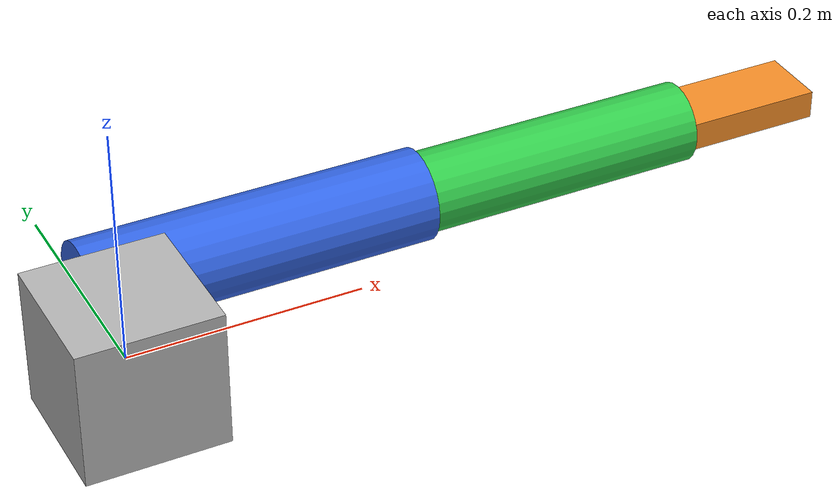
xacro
<?xml version="1.0"?>
<robot name="dracomancer" xmlns:xacro="http://www.ros.org/wiki/xacro">

  <!-- ===== Parameters ===== -->
  <xacro:property name="pi" value="3.141592653589793"/>

  <!-- Lengths [m] -->
  <xacro:property name="upper_arm_length" value="0.30"/>
  <xacro:property name="forearm_length"  value="0.25"/>
  <xacro:property name="hand_length"     value="0.12"/>

  <!-- Radii [m] -->
  <xacro:property name="upper_arm_radius" value="0.04"/>
  <xacro:property name="forearm_radius"   value="0.035"/>
  <xacro:property name="wrist_radius"     value="0.03"/>

  <!-- Masses [kg] -->
  <xacro:property name="upper_arm_mass" value="2.0"/>
  <xacro:property name="forearm_mass"   value="1.5"/>
  <xacro:property name="hand_mass"      value="0.6"/>

  <!-- ===== Macros ===== -->
  <xacro:macro name="box_inertial" params="mass x y z">
    <inertial>
      <mass value="${mass}"/>
      <origin xyz="0 0 0" rpy="0 0 0"/>
      <inertia
        ixx="${mass*(y*y+z*z)/12.0}"
        ixy="0.0"
        ixz="0.0"
        iyy="${mass*(x*x+z*z)/12.0}"
        iyz="0.0"
        izz="${mass*(x*x+y*y)/12.0}"/>
    </inertial>
  </xacro:macro>

  <xacro:macro name="cylinder_inertial" params="mass radius length axis">
    <inertial>
      <mass value="${mass}"/>
      <origin xyz="0 0 0" rpy="0 0 0"/>
      <!-- default: cylinder whose principal axis is z -->
      <xacro:if value="${axis == 'z'}">
        <inertia
          ixx="${mass*(3*radius*radius + length*length)/12.0}"
          ixy="0.0"
          ixz="0.0"
          iyy="${mass*(3*radius*radius + length*length)/12.0}"
          iyz="0.0"
          izz="${0.5*mass*radius*radius}"/>
      </xacro:if>
      <!-- cylinder principal axis is x -->
      <xacro:if value="${axis == 'x'}">
        <inertia
          ixx="${0.5*mass*radius*radius}"
          ixy="0.0"
          ixz="0.0"
          iyy="${mass*(3*radius*radius + length*length)/12.0}"
          iyz="0.0"
          izz="${mass*(3*radius*radius + length*length)/12.0}"/>
      </xacro:if>
      <!-- cylinder principal axis is y -->
      <xacro:if value="${axis == 'y'}">
        <inertia
          ixx="${mass*(3*radius*radius + length*length)/12.0}"
          ixy="0.0"
          ixz="0.0"
          iyy="${0.5*mass*radius*radius}"
          iyz="0.0"
          izz="${mass*(3*radius*radius + length*length)/12.0}"/>
      </xacro:if>
    </inertial>
  </xacro:macro>

  <xacro:macro name="arm_segment" params="name length radius mass color">
    <link name="${name}">
      <visual>
        <!-- cylinder axis is z, so rotate to align along x -->
        <origin xyz="${length/2.0} 0 0" rpy="0 ${pi/2.0} 0"/>
        <geometry>
          <cylinder radius="${radius}" length="${length}"/>
        </geometry>
        <material name="${color}"/>
      </visual>

      <collision>
        <origin xyz="${length/2.0} 0 0" rpy="0 ${pi/2.0} 0"/>
        <geometry>
          <cylinder radius="${radius}" length="${length}"/>
        </geometry>
      </collision>

      <xacro:cylinder_inertial mass="${mass}" radius="${radius}" length="${length}" axis="x"/>
    </link>
  </xacro:macro>

  <!-- ===== Materials ===== -->
  <material name="gray">
    <color rgba="0.7 0.7 0.7 1.0"/>
  </material>
  <material name="blue">
    <color rgba="0.2 0.4 0.9 1.0"/>
  </material>
  <material name="green">
    <color rgba="0.2 0.8 0.3 1.0"/>
  </material>
  <material name="orange">
    <color rgba="0.95 0.55 0.15 1.0"/>
  </material>

  <!-- ===== Base ===== -->
  <link name="torso_anchor">
    <visual>
      <origin xyz="0 0 0" rpy="0 0 0"/>
      <geometry>
        <box size="0.12 0.12 0.12"/>
      </geometry>
      <material name="gray"/>
    </visual>
    <collision>
      <origin xyz="0 0 0" rpy="0 0 0"/>
      <geometry>
        <box size="0.12 0.12 0.12"/>
      </geometry>
    </collision>
    <xacro:box_inertial mass="5.0" x="0.12" y="0.12" z="0.12"/>
  </link>

  <!-- dummy links for multi-DoF shoulder -->
  <link name="shoulder_yaw_link"/>
  <link name="shoulder_pitch_link"/>
  <link name="shoulder_roll_link"/>
  <link name="elbow_link"/>
  <link name="forearm_rot_link"/>
  <link name="wrist_pitch_link"/>
  <link name="wrist_yaw_link"/>

  <!-- actual geometry links -->
  <xacro:arm_segment name="upper_arm_link"
                     length="${upper_arm_length}"
                     radius="${upper_arm_radius}"
                     mass="${upper_arm_mass}"
                     color="blue"/>

  <xacro:arm_segment name="forearm_link"
                     length="${forearm_length}"
                     radius="${forearm_radius}"
                     mass="${forearm_mass}"
                     color="green"/>

  <link name="hand_link">
    <visual>
      <origin xyz="${hand_length/2.0} 0 0" rpy="0 0 0"/>
      <geometry>
        <box size="${hand_length} 0.06 0.025"/>
      </geometry>
      <material name="orange"/>
    </visual>
    <collision>
      <origin xyz="${hand_length/2.0} 0 0" rpy="0 0 0"/>
      <geometry>
        <box size="${hand_length} 0.06 0.025"/>
      </geometry>
    </collision>
    <xacro:box_inertial mass="${hand_mass}" x="${hand_length}" y="0.06" z="0.025"/>
  </link>

  <!-- ===== Joints ===== -->

  <!-- Shoulder 3DoF -->
  <joint name="shoulder_yaw_joint" type="revolute">
    <parent link="torso_anchor"/>
    <child link="shoulder_yaw_link"/>
    <origin xyz="0 0.10 0" rpy="0 0 0"/>
    <axis xyz="0 0 1"/>
    <limit lower="${-pi}" upper="${pi}" effort="30" velocity="3.0"/>
  </joint>

  <joint name="shoulder_pitch_joint" type="revolute">
    <parent link="shoulder_yaw_link"/>
    <child link="shoulder_pitch_link"/>
    <origin xyz="0 0 0" rpy="0 0 0"/>
    <axis xyz="0 1 0"/>
    <limit lower="${-pi/2.0}" upper="${pi/2.0}" effort="30" velocity="3.0"/>
  </joint>

  <joint name="shoulder_roll_joint" type="revolute">
    <parent link="shoulder_pitch_link"/>
    <child link="shoulder_roll_link"/>
    <origin xyz="0 0 0" rpy="0 0 0"/>
    <axis xyz="1 0 0"/>
    <limit lower="${-pi/2.0}" upper="${pi/2.0}" effort="20" velocity="3.0"/>
  </joint>

  <joint name="upper_arm_fixed" type="fixed">
    <parent link="shoulder_roll_link"/>
    <child link="upper_arm_link"/>
    <origin xyz="0 0 0" rpy="0 0 0"/>
  </joint>

  <!-- Elbow flexion -->
  <joint name="elbow_flex_joint" type="revolute">
    <parent link="upper_arm_link"/>
    <child link="elbow_link"/>
    <origin xyz="${upper_arm_length} 0 0" rpy="0 0 0"/>
    <axis xyz="0 1 0"/>
    <limit lower="0.0" upper="${5.0*pi/6.0}" effort="20" velocity="3.0"/>
  </joint>

  <joint name="forearm_fixed" type="fixed">
    <parent link="elbow_link"/>
    <child link="forearm_rot_link"/>
    <origin xyz="0 0 0" rpy="0 0 0"/>
  </joint>

  <!-- Forearm pronation/supination -->
  <joint name="forearm_rot_joint" type="revolute">
    <parent link="forearm_rot_link"/>
    <child link="forearm_link"/>
    <origin xyz="0 0 0" rpy="0 0 0"/>
    <axis xyz="1 0 0"/>
    <limit lower="${-pi}" upper="${pi}" effort="10" velocity="4.0"/>
  </joint>

  <!-- Wrist 2DoF -->
  <joint name="wrist_pitch_joint" type="revolute">
    <parent link="forearm_link"/>
    <child link="wrist_pitch_link"/>
    <origin xyz="${forearm_length} 0 0" rpy="0 0 0"/>
    <axis xyz="0 1 0"/>
    <limit lower="${-pi/2.0}" upper="${pi/2.0}" effort="8" velocity="4.0"/>
  </joint>

  <joint name="wrist_yaw_joint" type="revolute">
    <parent link="wrist_pitch_link"/>
    <child link="wrist_yaw_link"/>
    <origin xyz="0 0 0" rpy="0 0 0"/>
    <axis xyz="0 0 1"/>
    <limit lower="${-pi/2.0}" upper="${pi/2.0}" effort="8" velocity="4.0"/>
  </joint>

  <joint name="hand_fixed" type="fixed">
    <parent link="wrist_yaw_link"/>
    <child link="hand_link"/>
    <origin xyz="0 0 0" rpy="0 0 0"/>
  </joint>

</robot>
